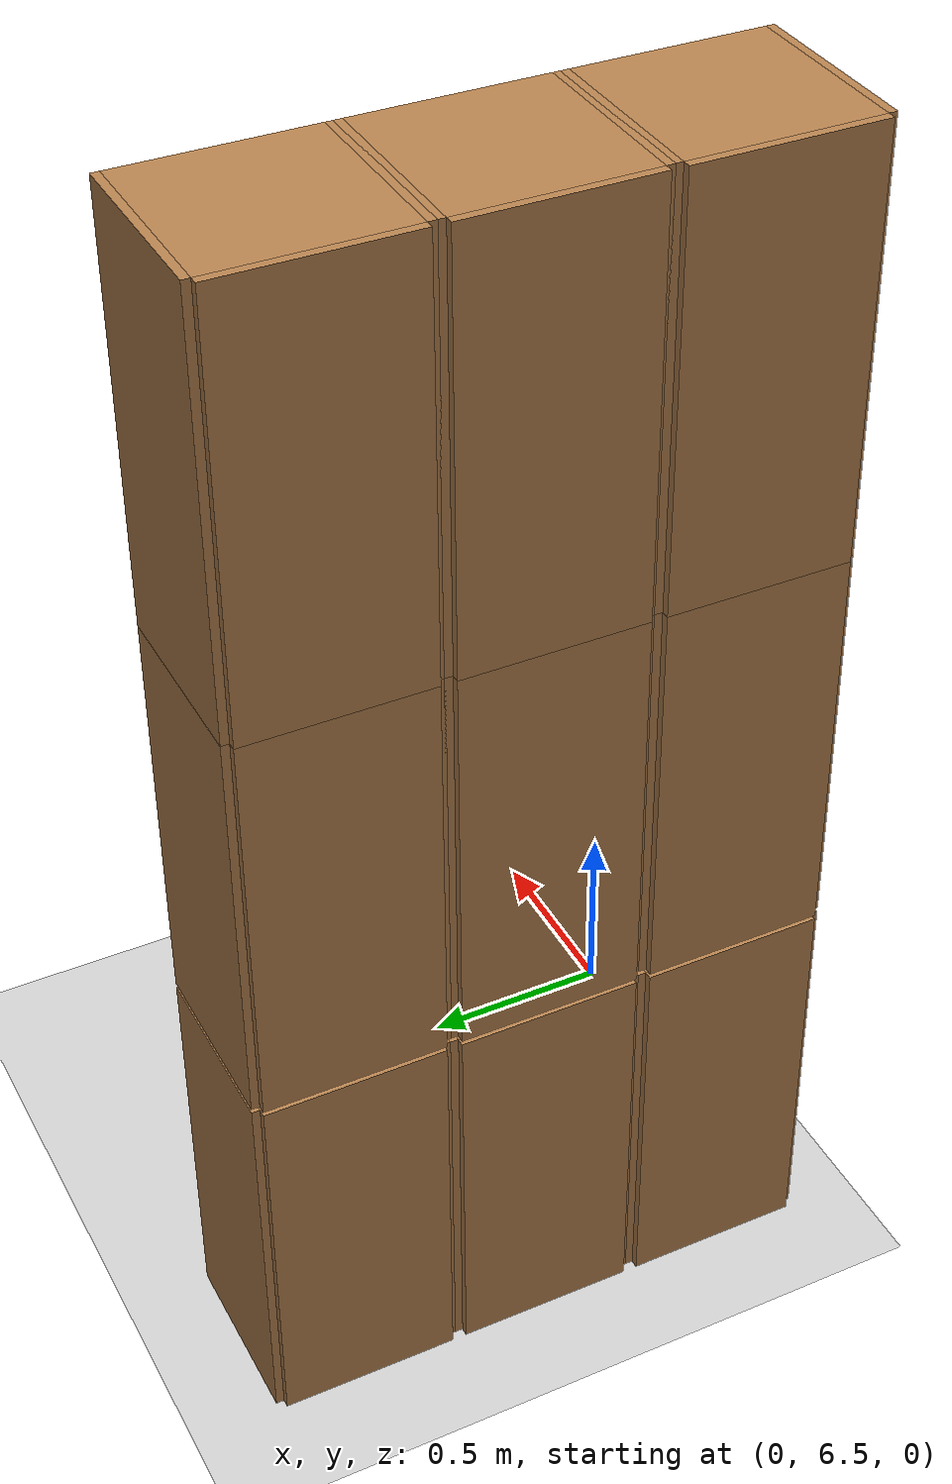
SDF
<sdf version="1.6">
 <world name="default">
  <model name="ground_plane">
   <static>1</static>
   <link name="link">
    <collision name="collision">
     <geometry><plane><normal>0 0 1</normal><size>100 100</size></plane></geometry>
     <surface>
      <contact><collide_bitmask>65535</collide_bitmask></contact>
      <friction><ode><mu>100</mu><mu2>50</mu2></ode></friction>
     </surface>
    </collision>
    <visual name="visual">
     <cast_shadows>0</cast_shadows>
     <geometry><plane><normal>0 0 1</normal><size>100 100</size></plane></geometry>
     <material>
      <script><uri>file://media/materials/scripts/gazebo.material</uri><name>Gazebo/Grey</name></script>
     </material>
    </visual>
   </link>
  </model>
  <model name="Locker18_clone_4_clone_2_clone_1_clone_clone_clone_2_clone">
   <model name="Locker18">
    <model name="Locker3">
     <model name="cabinet">
      <static>1</static>
      <link name="cabinet_bottom_plate">
       <inertial>
        <pose>0 0 -1 0 -0 0</pose>
        <inertia><ixx>2.05</ixx><ixy>0</ixy><ixz>0</ixz><iyy>2.05</iyy><iyz>0</iyz><izz>2.05</izz></inertia>
        <mass>25</mass>
       </inertial>
       <collision name="cabinet_bottom_plate_geom">
        <pose>0 0 0.01 0 -0 0</pose>
        <geometry><box><size>0.45 0.45 0.02</size></box></geometry>
       </collision>
       <visual name="cabinet_bottom_plate_geom_visual">
        <pose>0 0 0.01 0 -0 0</pose>
        <geometry><box><size>0.45 0.45 0.02</size></box></geometry>
        <material>
         <script><uri>file://media/materials/scripts/gazebo.material</uri><name>Gazebo/Wood</name></script>
        </material>
       </visual>
       <collision name="cabinet_bottom_plate_geom_cabinet_back_plate">
        <pose>0.235 0 0.51 0 -0 0</pose>
        <geometry><box><size>0.02 0.45 1.02</size></box></geometry>
       </collision>
       <visual name="cabinet_bottom_plate_geom_cabinet_back_plate_visual">
        <pose>0.235 0 0.51 0 -0 0</pose>
        <geometry><box><size>0.02 0.45 1.02</size></box></geometry>
        <material>
         <script><uri>file://media/materials/scripts/gazebo.material</uri><name>Gazebo/Wood</name></script>
        </material>
       </visual>
       <collision name="cabinet_bottom_plate_geom_cabinet_left_plate">
        <pose>0 0.235 0.51 0 -0 0</pose>
        <geometry><box><size>0.45 0.02 1.02</size></box></geometry>
       </collision>
       <visual name="cabinet_bottom_plate_geom_cabinet_left_plate_visual">
        <pose>0 0.235 0.51 0 -0 0</pose>
        <geometry><box><size>0.45 0.02 1.02</size></box></geometry>
        <material>
         <script><uri>file://media/materials/scripts/gazebo.material</uri><name>Gazebo/Wood</name></script>
        </material>
       </visual>
       <collision name="cabinet_bottom_plate_geom_cabinet_middle_plate">
        <pose>0 0 0.51 0 -0 0</pose>
        <geometry><box><size>0.45 0.45 0.02</size></box></geometry>
       </collision>
       <visual name="cabinet_bottom_plate_geom_cabinet_middle_plate_visual">
        <pose>0 0 0.51 0 -0 0</pose>
        <geometry><box><size>0.45 0.45 0.02</size></box></geometry>
        <material>
         <script><uri>file://media/materials/scripts/gazebo.material</uri><name>Gazebo/Wood</name></script>
        </material>
       </visual>
       <collision name="cabinet_bottom_plate_geom_cabinet_right_plate">
        <pose>0 -0.235 0.51 0 -0 0</pose>
        <geometry><box><size>0.45 0.02 1.02</size></box></geometry>
       </collision>
       <visual name="cabinet_bottom_plate_geom_cabinet_right_plate_visual">
        <pose>0 -0.235 0.51 0 -0 0</pose>
        <geometry><box><size>0.45 0.02 1.02</size></box></geometry>
        <material>
         <script><uri>file://media/materials/scripts/gazebo.material</uri><name>Gazebo/Wood</name></script>
        </material>
       </visual>
       <collision name="cabinet_bottom_plate_geom_cabinet_top_plate">
        <pose>0 0 1.01 0 -0 0</pose>
        <geometry><box><size>0.45 0.45 0.02</size></box></geometry>
       </collision>
       <visual name="cabinet_bottom_plate_geom_cabinet_top_plate_visual">
        <pose>0 0 1.01 0 -0 0</pose>
        <geometry><box><size>0.45 0.45 0.02</size></box></geometry>
        <material>
         <script><uri>file://media/materials/scripts/gazebo.material</uri><name>Gazebo/Wood</name></script>
        </material>
       </visual>
      </link>
      <pose>-0.676968 1.45758 0 0 -0 0</pose>
     </model>
     <model name="cabinet_clone">
      <static>1</static>
      <link name="cabinet_bottom_plate">
       <inertial>
        <pose>0 0 -1 0 -0 0</pose>
        <inertia><ixx>2.05</ixx><ixy>0</ixy><ixz>0</ixz><iyy>2.05</iyy><iyz>0</iyz><izz>2.05</izz></inertia>
        <mass>25</mass>
       </inertial>
       <collision name="cabinet_bottom_plate_geom">
        <pose>0 0 0.01 0 -0 0</pose>
        <geometry><box><size>0.45 0.45 0.02</size></box></geometry>
       </collision>
       <visual name="cabinet_bottom_plate_geom_visual">
        <pose>0 0 0.01 0 -0 0</pose>
        <geometry><box><size>0.45 0.45 0.02</size></box></geometry>
        <material>
         <script><uri>file://media/materials/scripts/gazebo.material</uri><name>Gazebo/Wood</name></script>
        </material>
       </visual>
       <collision name="cabinet_bottom_plate_geom_cabinet_back_plate">
        <pose>0.235 0 0.51 0 -0 0</pose>
        <geometry><box><size>0.02 0.45 1.02</size></box></geometry>
       </collision>
       <visual name="cabinet_bottom_plate_geom_cabinet_back_plate_visual">
        <pose>0.235 0 0.51 0 -0 0</pose>
        <geometry><box><size>0.02 0.45 1.02</size></box></geometry>
        <material>
         <script><uri>file://media/materials/scripts/gazebo.material</uri><name>Gazebo/Wood</name></script>
        </material>
       </visual>
       <collision name="cabinet_bottom_plate_geom_cabinet_left_plate">
        <pose>0 0.235 0.51 0 -0 0</pose>
        <geometry><box><size>0.45 0.02 1.02</size></box></geometry>
       </collision>
       <visual name="cabinet_bottom_plate_geom_cabinet_left_plate_visual">
        <pose>0 0.235 0.51 0 -0 0</pose>
        <geometry><box><size>0.45 0.02 1.02</size></box></geometry>
        <material>
         <script><uri>file://media/materials/scripts/gazebo.material</uri><name>Gazebo/Wood</name></script>
        </material>
       </visual>
       <collision name="cabinet_bottom_plate_geom_cabinet_middle_plate">
        <pose>0 0 0.51 0 -0 0</pose>
        <geometry><box><size>0.45 0.45 0.02</size></box></geometry>
       </collision>
       <visual name="cabinet_bottom_plate_geom_cabinet_middle_plate_visual">
        <pose>0 0 0.51 0 -0 0</pose>
        <geometry><box><size>0.45 0.45 0.02</size></box></geometry>
        <material>
         <script><uri>file://media/materials/scripts/gazebo.material</uri><name>Gazebo/Wood</name></script>
        </material>
       </visual>
       <collision name="cabinet_bottom_plate_geom_cabinet_right_plate">
        <pose>0 -0.235 0.51 0 -0 0</pose>
        <geometry><box><size>0.45 0.02 1.02</size></box></geometry>
       </collision>
       <visual name="cabinet_bottom_plate_geom_cabinet_right_plate_visual">
        <pose>0 -0.235 0.51 0 -0 0</pose>
        <geometry><box><size>0.45 0.02 1.02</size></box></geometry>
        <material>
         <script><uri>file://media/materials/scripts/gazebo.material</uri><name>Gazebo/Wood</name></script>
        </material>
       </visual>
       <collision name="cabinet_bottom_plate_geom_cabinet_top_plate">
        <pose>0 0 1.01 0 -0 0</pose>
        <geometry><box><size>0.45 0.45 0.02</size></box></geometry>
       </collision>
       <visual name="cabinet_bottom_plate_geom_cabinet_top_plate_visual">
        <pose>0 0 1.01 0 -0 0</pose>
        <geometry><box><size>0.45 0.45 0.02</size></box></geometry>
        <material>
         <script><uri>file://media/materials/scripts/gazebo.material</uri><name>Gazebo/Wood</name></script>
        </material>
       </visual>
      </link>
      <pose>-0.676968 0.970971 0 0 -0 0</pose>
     </model>
     <model name="cabinet_clone_0">
      <static>1</static>
      <link name="cabinet_bottom_plate">
       <inertial>
        <pose>0 0 -1 0 -0 0</pose>
        <inertia><ixx>2.05</ixx><ixy>0</ixy><ixz>0</ixz><iyy>2.05</iyy><iyz>0</iyz><izz>2.05</izz></inertia>
        <mass>25</mass>
       </inertial>
       <collision name="cabinet_bottom_plate_geom">
        <pose>0 0 0.01 0 -0 0</pose>
        <geometry><box><size>0.45 0.45 0.02</size></box></geometry>
       </collision>
       <visual name="cabinet_bottom_plate_geom_visual">
        <pose>0 0 0.01 0 -0 0</pose>
        <geometry><box><size>0.45 0.45 0.02</size></box></geometry>
        <material>
         <script><uri>file://media/materials/scripts/gazebo.material</uri><name>Gazebo/Wood</name></script>
        </material>
       </visual>
       <collision name="cabinet_bottom_plate_geom_cabinet_back_plate">
        <pose>0.235 0 0.51 0 -0 0</pose>
        <geometry><box><size>0.02 0.45 1.02</size></box></geometry>
       </collision>
       <visual name="cabinet_bottom_plate_geom_cabinet_back_plate_visual">
        <pose>0.235 0 0.51 0 -0 0</pose>
        <geometry><box><size>0.02 0.45 1.02</size></box></geometry>
        <material>
         <script><uri>file://media/materials/scripts/gazebo.material</uri><name>Gazebo/Wood</name></script>
        </material>
       </visual>
       <collision name="cabinet_bottom_plate_geom_cabinet_left_plate">
        <pose>0 0.235 0.51 0 -0 0</pose>
        <geometry><box><size>0.45 0.02 1.02</size></box></geometry>
       </collision>
       <visual name="cabinet_bottom_plate_geom_cabinet_left_plate_visual">
        <pose>0 0.235 0.51 0 -0 0</pose>
        <geometry><box><size>0.45 0.02 1.02</size></box></geometry>
        <material>
         <script><uri>file://media/materials/scripts/gazebo.material</uri><name>Gazebo/Wood</name></script>
        </material>
       </visual>
       <collision name="cabinet_bottom_plate_geom_cabinet_middle_plate">
        <pose>0 0 0.51 0 -0 0</pose>
        <geometry><box><size>0.45 0.45 0.02</size></box></geometry>
       </collision>
       <visual name="cabinet_bottom_plate_geom_cabinet_middle_plate_visual">
        <pose>0 0 0.51 0 -0 0</pose>
        <geometry><box><size>0.45 0.45 0.02</size></box></geometry>
        <material>
         <script><uri>file://media/materials/scripts/gazebo.material</uri><name>Gazebo/Wood</name></script>
        </material>
       </visual>
       <collision name="cabinet_bottom_plate_geom_cabinet_right_plate">
        <pose>0 -0.235 0.51 0 -0 0</pose>
        <geometry><box><size>0.45 0.02 1.02</size></box></geometry>
       </collision>
       <visual name="cabinet_bottom_plate_geom_cabinet_right_plate_visual">
        <pose>0 -0.235 0.51 0 -0 0</pose>
        <geometry><box><size>0.45 0.02 1.02</size></box></geometry>
        <material>
         <script><uri>file://media/materials/scripts/gazebo.material</uri><name>Gazebo/Wood</name></script>
        </material>
       </visual>
       <collision name="cabinet_bottom_plate_geom_cabinet_top_plate">
        <pose>0 0 1.01 0 -0 0</pose>
        <geometry><box><size>0.45 0.45 0.02</size></box></geometry>
       </collision>
       <visual name="cabinet_bottom_plate_geom_cabinet_top_plate_visual">
        <pose>0 0 1.01 0 -0 0</pose>
        <geometry><box><size>0.45 0.45 0.02</size></box></geometry>
        <material>
         <script><uri>file://media/materials/scripts/gazebo.material</uri><name>Gazebo/Wood</name></script>
        </material>
       </visual>
      </link>
      <pose>-0.676968 0.48391 0 0 -0 0</pose>
     </model>
     <static>0</static>
     <pose>0 3e-06 -1.02763 0 -0 0</pose>
    </model>
    <model name="Locker3_clone">
     <model name="cabinet">
      <static>1</static>
      <link name="cabinet_bottom_plate">
       <inertial>
        <pose>0 0 -1 0 -0 0</pose>
        <inertia><ixx>2.05</ixx><ixy>0</ixy><ixz>0</ixz><iyy>2.05</iyy><iyz>0</iyz><izz>2.05</izz></inertia>
        <mass>25</mass>
       </inertial>
       <collision name="cabinet_bottom_plate_geom">
        <pose>0 0 0.01 0 -0 0</pose>
        <geometry><box><size>0.45 0.45 0.02</size></box></geometry>
       </collision>
       <visual name="cabinet_bottom_plate_geom_visual">
        <pose>0 0 0.01 0 -0 0</pose>
        <geometry><box><size>0.45 0.45 0.02</size></box></geometry>
        <material>
         <script><uri>file://media/materials/scripts/gazebo.material</uri><name>Gazebo/Wood</name></script>
        </material>
       </visual>
       <collision name="cabinet_bottom_plate_geom_cabinet_back_plate">
        <pose>0.235 0 0.51 0 -0 0</pose>
        <geometry><box><size>0.02 0.45 1.02</size></box></geometry>
       </collision>
       <visual name="cabinet_bottom_plate_geom_cabinet_back_plate_visual">
        <pose>0.235 0 0.51 0 -0 0</pose>
        <geometry><box><size>0.02 0.45 1.02</size></box></geometry>
        <material>
         <script><uri>file://media/materials/scripts/gazebo.material</uri><name>Gazebo/Wood</name></script>
        </material>
       </visual>
       <collision name="cabinet_bottom_plate_geom_cabinet_left_plate">
        <pose>0 0.235 0.51 0 -0 0</pose>
        <geometry><box><size>0.45 0.02 1.02</size></box></geometry>
       </collision>
       <visual name="cabinet_bottom_plate_geom_cabinet_left_plate_visual">
        <pose>0 0.235 0.51 0 -0 0</pose>
        <geometry><box><size>0.45 0.02 1.02</size></box></geometry>
        <material>
         <script><uri>file://media/materials/scripts/gazebo.material</uri><name>Gazebo/Wood</name></script>
        </material>
       </visual>
       <collision name="cabinet_bottom_plate_geom_cabinet_middle_plate">
        <pose>0 0 0.51 0 -0 0</pose>
        <geometry><box><size>0.45 0.45 0.02</size></box></geometry>
       </collision>
       <visual name="cabinet_bottom_plate_geom_cabinet_middle_plate_visual">
        <pose>0 0 0.51 0 -0 0</pose>
        <geometry><box><size>0.45 0.45 0.02</size></box></geometry>
        <material>
         <script><uri>file://media/materials/scripts/gazebo.material</uri><name>Gazebo/Wood</name></script>
        </material>
       </visual>
       <collision name="cabinet_bottom_plate_geom_cabinet_right_plate">
        <pose>0 -0.235 0.51 0 -0 0</pose>
        <geometry><box><size>0.45 0.02 1.02</size></box></geometry>
       </collision>
       <visual name="cabinet_bottom_plate_geom_cabinet_right_plate_visual">
        <pose>0 -0.235 0.51 0 -0 0</pose>
        <geometry><box><size>0.45 0.02 1.02</size></box></geometry>
        <material>
         <script><uri>file://media/materials/scripts/gazebo.material</uri><name>Gazebo/Wood</name></script>
        </material>
       </visual>
       <collision name="cabinet_bottom_plate_geom_cabinet_top_plate">
        <pose>0 0 1.01 0 -0 0</pose>
        <geometry><box><size>0.45 0.45 0.02</size></box></geometry>
       </collision>
       <visual name="cabinet_bottom_plate_geom_cabinet_top_plate_visual">
        <pose>0 0 1.01 0 -0 0</pose>
        <geometry><box><size>0.45 0.45 0.02</size></box></geometry>
        <material>
         <script><uri>file://media/materials/scripts/gazebo.material</uri><name>Gazebo/Wood</name></script>
        </material>
       </visual>
      </link>
      <pose>-0.676968 1.45758 0 0 -0 0</pose>
     </model>
     <model name="cabinet_clone">
      <static>1</static>
      <link name="cabinet_bottom_plate">
       <inertial>
        <pose>0 0 -1 0 -0 0</pose>
        <inertia><ixx>2.05</ixx><ixy>0</ixy><ixz>0</ixz><iyy>2.05</iyy><iyz>0</iyz><izz>2.05</izz></inertia>
        <mass>25</mass>
       </inertial>
       <collision name="cabinet_bottom_plate_geom">
        <pose>0 0 0.01 0 -0 0</pose>
        <geometry><box><size>0.45 0.45 0.02</size></box></geometry>
       </collision>
       <visual name="cabinet_bottom_plate_geom_visual">
        <pose>0 0 0.01 0 -0 0</pose>
        <geometry><box><size>0.45 0.45 0.02</size></box></geometry>
        <material>
         <script><uri>file://media/materials/scripts/gazebo.material</uri><name>Gazebo/Wood</name></script>
        </material>
       </visual>
       <collision name="cabinet_bottom_plate_geom_cabinet_back_plate">
        <pose>0.235 0 0.51 0 -0 0</pose>
        <geometry><box><size>0.02 0.45 1.02</size></box></geometry>
       </collision>
       <visual name="cabinet_bottom_plate_geom_cabinet_back_plate_visual">
        <pose>0.235 0 0.51 0 -0 0</pose>
        <geometry><box><size>0.02 0.45 1.02</size></box></geometry>
        <material>
         <script><uri>file://media/materials/scripts/gazebo.material</uri><name>Gazebo/Wood</name></script>
        </material>
       </visual>
       <collision name="cabinet_bottom_plate_geom_cabinet_left_plate">
        <pose>0 0.235 0.51 0 -0 0</pose>
        <geometry><box><size>0.45 0.02 1.02</size></box></geometry>
       </collision>
       <visual name="cabinet_bottom_plate_geom_cabinet_left_plate_visual">
        <pose>0 0.235 0.51 0 -0 0</pose>
        <geometry><box><size>0.45 0.02 1.02</size></box></geometry>
        <material>
         <script><uri>file://media/materials/scripts/gazebo.material</uri><name>Gazebo/Wood</name></script>
        </material>
       </visual>
       <collision name="cabinet_bottom_plate_geom_cabinet_middle_plate">
        <pose>0 0 0.51 0 -0 0</pose>
        <geometry><box><size>0.45 0.45 0.02</size></box></geometry>
       </collision>
       <visual name="cabinet_bottom_plate_geom_cabinet_middle_plate_visual">
        <pose>0 0 0.51 0 -0 0</pose>
        <geometry><box><size>0.45 0.45 0.02</size></box></geometry>
        <material>
         <script><uri>file://media/materials/scripts/gazebo.material</uri><name>Gazebo/Wood</name></script>
        </material>
       </visual>
       <collision name="cabinet_bottom_plate_geom_cabinet_right_plate">
        <pose>0 -0.235 0.51 0 -0 0</pose>
        <geometry><box><size>0.45 0.02 1.02</size></box></geometry>
       </collision>
       <visual name="cabinet_bottom_plate_geom_cabinet_right_plate_visual">
        <pose>0 -0.235 0.51 0 -0 0</pose>
        <geometry><box><size>0.45 0.02 1.02</size></box></geometry>
        <material>
         <script><uri>file://media/materials/scripts/gazebo.material</uri><name>Gazebo/Wood</name></script>
        </material>
       </visual>
       <collision name="cabinet_bottom_plate_geom_cabinet_top_plate">
        <pose>0 0 1.01 0 -0 0</pose>
        <geometry><box><size>0.45 0.45 0.02</size></box></geometry>
       </collision>
       <visual name="cabinet_bottom_plate_geom_cabinet_top_plate_visual">
        <pose>0 0 1.01 0 -0 0</pose>
        <geometry><box><size>0.45 0.45 0.02</size></box></geometry>
        <material>
         <script><uri>file://media/materials/scripts/gazebo.material</uri><name>Gazebo/Wood</name></script>
        </material>
       </visual>
      </link>
      <pose>-0.676968 0.970971 0 0 -0 0</pose>
     </model>
     <model name="cabinet_clone_0">
      <static>1</static>
      <link name="cabinet_bottom_plate">
       <inertial>
        <pose>0 0 -1 0 -0 0</pose>
        <inertia><ixx>2.05</ixx><ixy>0</ixy><ixz>0</ixz><iyy>2.05</iyy><iyz>0</iyz><izz>2.05</izz></inertia>
        <mass>25</mass>
       </inertial>
       <collision name="cabinet_bottom_plate_geom">
        <pose>0 0 0.01 0 -0 0</pose>
        <geometry><box><size>0.45 0.45 0.02</size></box></geometry>
       </collision>
       <visual name="cabinet_bottom_plate_geom_visual">
        <pose>0 0 0.01 0 -0 0</pose>
        <geometry><box><size>0.45 0.45 0.02</size></box></geometry>
        <material>
         <script><uri>file://media/materials/scripts/gazebo.material</uri><name>Gazebo/Wood</name></script>
        </material>
       </visual>
       <collision name="cabinet_bottom_plate_geom_cabinet_back_plate">
        <pose>0.235 0 0.51 0 -0 0</pose>
        <geometry><box><size>0.02 0.45 1.02</size></box></geometry>
       </collision>
       <visual name="cabinet_bottom_plate_geom_cabinet_back_plate_visual">
        <pose>0.235 0 0.51 0 -0 0</pose>
        <geometry><box><size>0.02 0.45 1.02</size></box></geometry>
        <material>
         <script><uri>file://media/materials/scripts/gazebo.material</uri><name>Gazebo/Wood</name></script>
        </material>
       </visual>
       <collision name="cabinet_bottom_plate_geom_cabinet_left_plate">
        <pose>0 0.235 0.51 0 -0 0</pose>
        <geometry><box><size>0.45 0.02 1.02</size></box></geometry>
       </collision>
       <visual name="cabinet_bottom_plate_geom_cabinet_left_plate_visual">
        <pose>0 0.235 0.51 0 -0 0</pose>
        <geometry><box><size>0.45 0.02 1.02</size></box></geometry>
        <material>
         <script><uri>file://media/materials/scripts/gazebo.material</uri><name>Gazebo/Wood</name></script>
        </material>
       </visual>
       <collision name="cabinet_bottom_plate_geom_cabinet_middle_plate">
        <pose>0 0 0.51 0 -0 0</pose>
        <geometry><box><size>0.45 0.45 0.02</size></box></geometry>
       </collision>
       <visual name="cabinet_bottom_plate_geom_cabinet_middle_plate_visual">
        <pose>0 0 0.51 0 -0 0</pose>
        <geometry><box><size>0.45 0.45 0.02</size></box></geometry>
        <material>
         <script><uri>file://media/materials/scripts/gazebo.material</uri><name>Gazebo/Wood</name></script>
        </material>
       </visual>
       <collision name="cabinet_bottom_plate_geom_cabinet_right_plate">
        <pose>0 -0.235 0.51 0 -0 0</pose>
        <geometry><box><size>0.45 0.02 1.02</size></box></geometry>
       </collision>
       <visual name="cabinet_bottom_plate_geom_cabinet_right_plate_visual">
        <pose>0 -0.235 0.51 0 -0 0</pose>
        <geometry><box><size>0.45 0.02 1.02</size></box></geometry>
        <material>
         <script><uri>file://media/materials/scripts/gazebo.material</uri><name>Gazebo/Wood</name></script>
        </material>
       </visual>
       <collision name="cabinet_bottom_plate_geom_cabinet_top_plate">
        <pose>0 0 1.01 0 -0 0</pose>
        <geometry><box><size>0.45 0.45 0.02</size></box></geometry>
       </collision>
       <visual name="cabinet_bottom_plate_geom_cabinet_top_plate_visual">
        <pose>0 0 1.01 0 -0 0</pose>
        <geometry><box><size>0.45 0.45 0.02</size></box></geometry>
        <material>
         <script><uri>file://media/materials/scripts/gazebo.material</uri><name>Gazebo/Wood</name></script>
        </material>
       </visual>
      </link>
      <pose>-0.676968 0.48391 0 0 -0 0</pose>
     </model>
     <static>0</static>
     <pose>0 3e-06 0.003717 0 -0 0</pose>
    </model>
    <model name="Locker3_clone_clone">
     <model name="cabinet">
      <static>1</static>
      <link name="cabinet_bottom_plate">
       <inertial>
        <pose>0 0 -1 0 -0 0</pose>
        <inertia><ixx>2.05</ixx><ixy>0</ixy><ixz>0</ixz><iyy>2.05</iyy><iyz>0</iyz><izz>2.05</izz></inertia>
        <mass>25</mass>
       </inertial>
       <collision name="cabinet_bottom_plate_geom">
        <pose>0 0 0.01 0 -0 0</pose>
        <geometry><box><size>0.45 0.45 0.02</size></box></geometry>
       </collision>
       <visual name="cabinet_bottom_plate_geom_visual">
        <pose>0 0 0.01 0 -0 0</pose>
        <geometry><box><size>0.45 0.45 0.02</size></box></geometry>
        <material>
         <script><uri>file://media/materials/scripts/gazebo.material</uri><name>Gazebo/Wood</name></script>
        </material>
       </visual>
       <collision name="cabinet_bottom_plate_geom_cabinet_back_plate">
        <pose>0.235 0 0.51 0 -0 0</pose>
        <geometry><box><size>0.02 0.45 1.02</size></box></geometry>
       </collision>
       <visual name="cabinet_bottom_plate_geom_cabinet_back_plate_visual">
        <pose>0.235 0 0.51 0 -0 0</pose>
        <geometry><box><size>0.02 0.45 1.02</size></box></geometry>
        <material>
         <script><uri>file://media/materials/scripts/gazebo.material</uri><name>Gazebo/Wood</name></script>
        </material>
       </visual>
       <collision name="cabinet_bottom_plate_geom_cabinet_left_plate">
        <pose>0 0.235 0.51 0 -0 0</pose>
        <geometry><box><size>0.45 0.02 1.02</size></box></geometry>
       </collision>
       <visual name="cabinet_bottom_plate_geom_cabinet_left_plate_visual">
        <pose>0 0.235 0.51 0 -0 0</pose>
        <geometry><box><size>0.45 0.02 1.02</size></box></geometry>
        <material>
         <script><uri>file://media/materials/scripts/gazebo.material</uri><name>Gazebo/Wood</name></script>
        </material>
       </visual>
       <collision name="cabinet_bottom_plate_geom_cabinet_middle_plate">
        <pose>0 0 0.51 0 -0 0</pose>
        <geometry><box><size>0.45 0.45 0.02</size></box></geometry>
       </collision>
       <visual name="cabinet_bottom_plate_geom_cabinet_middle_plate_visual">
        <pose>0 0 0.51 0 -0 0</pose>
        <geometry><box><size>0.45 0.45 0.02</size></box></geometry>
        <material>
         <script><uri>file://media/materials/scripts/gazebo.material</uri><name>Gazebo/Wood</name></script>
        </material>
       </visual>
       <collision name="cabinet_bottom_plate_geom_cabinet_right_plate">
        <pose>0 -0.235 0.51 0 -0 0</pose>
        <geometry><box><size>0.45 0.02 1.02</size></box></geometry>
       </collision>
       <visual name="cabinet_bottom_plate_geom_cabinet_right_plate_visual">
        <pose>0 -0.235 0.51 0 -0 0</pose>
        <geometry><box><size>0.45 0.02 1.02</size></box></geometry>
        <material>
         <script><uri>file://media/materials/scripts/gazebo.material</uri><name>Gazebo/Wood</name></script>
        </material>
       </visual>
       <collision name="cabinet_bottom_plate_geom_cabinet_top_plate">
        <pose>0 0 1.01 0 -0 0</pose>
        <geometry><box><size>0.45 0.45 0.02</size></box></geometry>
       </collision>
       <visual name="cabinet_bottom_plate_geom_cabinet_top_plate_visual">
        <pose>0 0 1.01 0 -0 0</pose>
        <geometry><box><size>0.45 0.45 0.02</size></box></geometry>
        <material>
         <script><uri>file://media/materials/scripts/gazebo.material</uri><name>Gazebo/Wood</name></script>
        </material>
       </visual>
      </link>
      <pose>-0.676968 1.45758 0 0 -0 0</pose>
     </model>
     <model name="cabinet_clone">
      <static>1</static>
      <link name="cabinet_bottom_plate">
       <inertial>
        <pose>0 0 -1 0 -0 0</pose>
        <inertia><ixx>2.05</ixx><ixy>0</ixy><ixz>0</ixz><iyy>2.05</iyy><iyz>0</iyz><izz>2.05</izz></inertia>
        <mass>25</mass>
       </inertial>
       <collision name="cabinet_bottom_plate_geom">
        <pose>0 0 0.01 0 -0 0</pose>
        <geometry><box><size>0.45 0.45 0.02</size></box></geometry>
       </collision>
       <visual name="cabinet_bottom_plate_geom_visual">
        <pose>0 0 0.01 0 -0 0</pose>
        <geometry><box><size>0.45 0.45 0.02</size></box></geometry>
        <material>
         <script><uri>file://media/materials/scripts/gazebo.material</uri><name>Gazebo/Wood</name></script>
        </material>
       </visual>
       <collision name="cabinet_bottom_plate_geom_cabinet_back_plate">
        <pose>0.235 0 0.51 0 -0 0</pose>
        <geometry><box><size>0.02 0.45 1.02</size></box></geometry>
       </collision>
       <visual name="cabinet_bottom_plate_geom_cabinet_back_plate_visual">
        <pose>0.235 0 0.51 0 -0 0</pose>
        <geometry><box><size>0.02 0.45 1.02</size></box></geometry>
        <material>
         <script><uri>file://media/materials/scripts/gazebo.material</uri><name>Gazebo/Wood</name></script>
        </material>
       </visual>
       <collision name="cabinet_bottom_plate_geom_cabinet_left_plate">
        <pose>0 0.235 0.51 0 -0 0</pose>
        <geometry><box><size>0.45 0.02 1.02</size></box></geometry>
       </collision>
       <visual name="cabinet_bottom_plate_geom_cabinet_left_plate_visual">
        <pose>0 0.235 0.51 0 -0 0</pose>
        <geometry><box><size>0.45 0.02 1.02</size></box></geometry>
        <material>
         <script><uri>file://media/materials/scripts/gazebo.material</uri><name>Gazebo/Wood</name></script>
        </material>
       </visual>
       <collision name="cabinet_bottom_plate_geom_cabinet_middle_plate">
        <pose>0 0 0.51 0 -0 0</pose>
        <geometry><box><size>0.45 0.45 0.02</size></box></geometry>
       </collision>
       <visual name="cabinet_bottom_plate_geom_cabinet_middle_plate_visual">
        <pose>0 0 0.51 0 -0 0</pose>
        <geometry><box><size>0.45 0.45 0.02</size></box></geometry>
        <material>
         <script><uri>file://media/materials/scripts/gazebo.material</uri><name>Gazebo/Wood</name></script>
        </material>
       </visual>
       <collision name="cabinet_bottom_plate_geom_cabinet_right_plate">
        <pose>0 -0.235 0.51 0 -0 0</pose>
        <geometry><box><size>0.45 0.02 1.02</size></box></geometry>
       </collision>
       <visual name="cabinet_bottom_plate_geom_cabinet_right_plate_visual">
        <pose>0 -0.235 0.51 0 -0 0</pose>
        <geometry><box><size>0.45 0.02 1.02</size></box></geometry>
        <material>
         <script><uri>file://media/materials/scripts/gazebo.material</uri><name>Gazebo/Wood</name></script>
        </material>
       </visual>
       <collision name="cabinet_bottom_plate_geom_cabinet_top_plate">
        <pose>0 0 1.01 0 -0 0</pose>
        <geometry><box><size>0.45 0.45 0.02</size></box></geometry>
       </collision>
       <visual name="cabinet_bottom_plate_geom_cabinet_top_plate_visual">
        <pose>0 0 1.01 0 -0 0</pose>
        <geometry><box><size>0.45 0.45 0.02</size></box></geometry>
        <material>
         <script><uri>file://media/materials/scripts/gazebo.material</uri><name>Gazebo/Wood</name></script>
        </material>
       </visual>
      </link>
      <pose>-0.676968 0.970971 0 0 -0 0</pose>
     </model>
     <model name="cabinet_clone_0">
      <static>1</static>
      <link name="cabinet_bottom_plate">
       <inertial>
        <pose>0 0 -1 0 -0 0</pose>
        <inertia><ixx>2.05</ixx><ixy>0</ixy><ixz>0</ixz><iyy>2.05</iyy><iyz>0</iyz><izz>2.05</izz></inertia>
        <mass>25</mass>
       </inertial>
       <collision name="cabinet_bottom_plate_geom">
        <pose>0 0 0.01 0 -0 0</pose>
        <geometry><box><size>0.45 0.45 0.02</size></box></geometry>
       </collision>
       <visual name="cabinet_bottom_plate_geom_visual">
        <pose>0 0 0.01 0 -0 0</pose>
        <geometry><box><size>0.45 0.45 0.02</size></box></geometry>
        <material>
         <script><uri>file://media/materials/scripts/gazebo.material</uri><name>Gazebo/Wood</name></script>
        </material>
       </visual>
       <collision name="cabinet_bottom_plate_geom_cabinet_back_plate">
        <pose>0.235 0 0.51 0 -0 0</pose>
        <geometry><box><size>0.02 0.45 1.02</size></box></geometry>
       </collision>
       <visual name="cabinet_bottom_plate_geom_cabinet_back_plate_visual">
        <pose>0.235 0 0.51 0 -0 0</pose>
        <geometry><box><size>0.02 0.45 1.02</size></box></geometry>
        <material>
         <script><uri>file://media/materials/scripts/gazebo.material</uri><name>Gazebo/Wood</name></script>
        </material>
       </visual>
       <collision name="cabinet_bottom_plate_geom_cabinet_left_plate">
        <pose>0 0.235 0.51 0 -0 0</pose>
        <geometry><box><size>0.45 0.02 1.02</size></box></geometry>
       </collision>
       <visual name="cabinet_bottom_plate_geom_cabinet_left_plate_visual">
        <pose>0 0.235 0.51 0 -0 0</pose>
        <geometry><box><size>0.45 0.02 1.02</size></box></geometry>
        <material>
         <script><uri>file://media/materials/scripts/gazebo.material</uri><name>Gazebo/Wood</name></script>
        </material>
       </visual>
       <collision name="cabinet_bottom_plate_geom_cabinet_middle_plate">
        <pose>0 0 0.51 0 -0 0</pose>
        <geometry><box><size>0.45 0.45 0.02</size></box></geometry>
       </collision>
       <visual name="cabinet_bottom_plate_geom_cabinet_middle_plate_visual">
        <pose>0 0 0.51 0 -0 0</pose>
        <geometry><box><size>0.45 0.45 0.02</size></box></geometry>
        <material>
         <script><uri>file://media/materials/scripts/gazebo.material</uri><name>Gazebo/Wood</name></script>
        </material>
       </visual>
       <collision name="cabinet_bottom_plate_geom_cabinet_right_plate">
        <pose>0 -0.235 0.51 0 -0 0</pose>
        <geometry><box><size>0.45 0.02 1.02</size></box></geometry>
       </collision>
       <visual name="cabinet_bottom_plate_geom_cabinet_right_plate_visual">
        <pose>0 -0.235 0.51 0 -0 0</pose>
        <geometry><box><size>0.45 0.02 1.02</size></box></geometry>
        <material>
         <script><uri>file://media/materials/scripts/gazebo.material</uri><name>Gazebo/Wood</name></script>
        </material>
       </visual>
       <collision name="cabinet_bottom_plate_geom_cabinet_top_plate">
        <pose>0 0 1.01 0 -0 0</pose>
        <geometry><box><size>0.45 0.45 0.02</size></box></geometry>
       </collision>
       <visual name="cabinet_bottom_plate_geom_cabinet_top_plate_visual">
        <pose>0 0 1.01 0 -0 0</pose>
        <geometry><box><size>0.45 0.45 0.02</size></box></geometry>
        <material>
         <script><uri>file://media/materials/scripts/gazebo.material</uri><name>Gazebo/Wood</name></script>
        </material>
       </visual>
      </link>
      <pose>-0.676968 0.48391 0 0 -0 0</pose>
     </model>
     <static>0</static>
     <pose>0 3e-06 1.02391 0 -0 0</pose>
    </model>
    <static>0</static>
    <pose>-0 4e-06 4e-06 0 -0 0</pose>
   </model>
   <static>0</static>
   <pose>-1.4992 8.18245 1.08672 0 -0 3.14119</pose>
  </model>
 </world>
</sdf>
